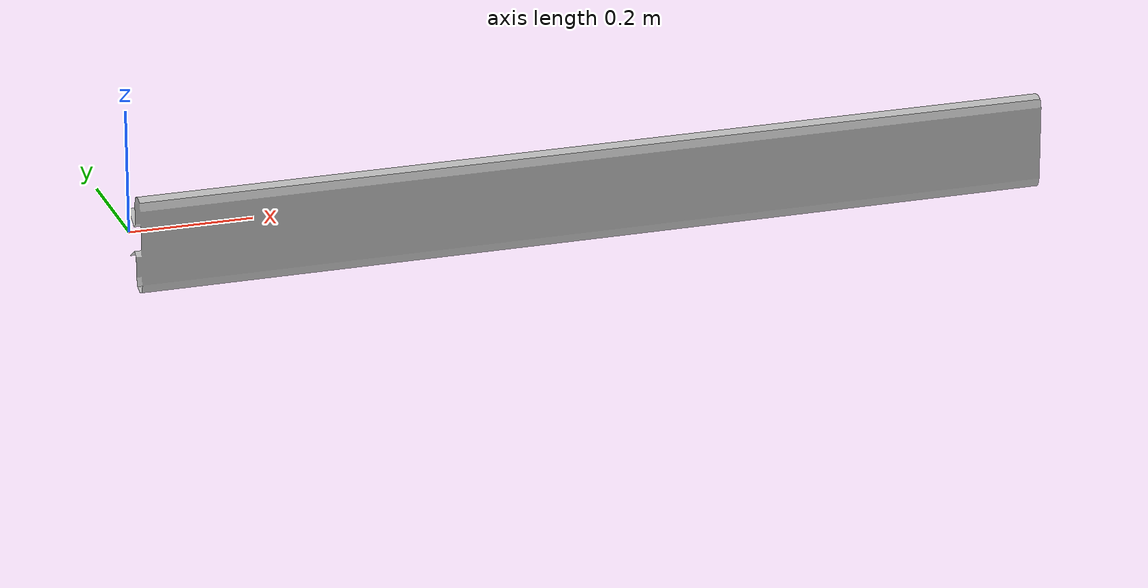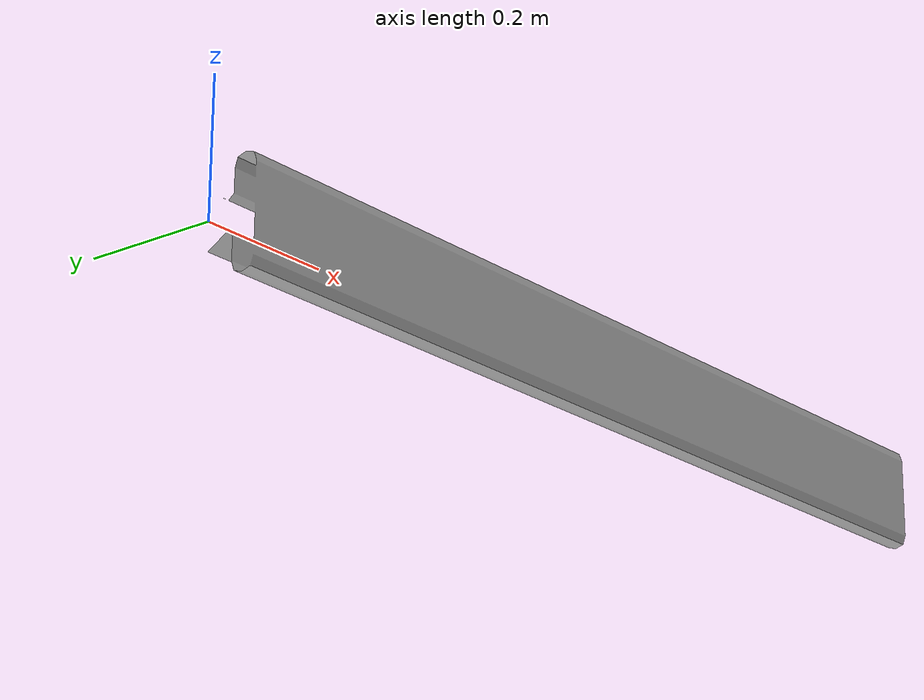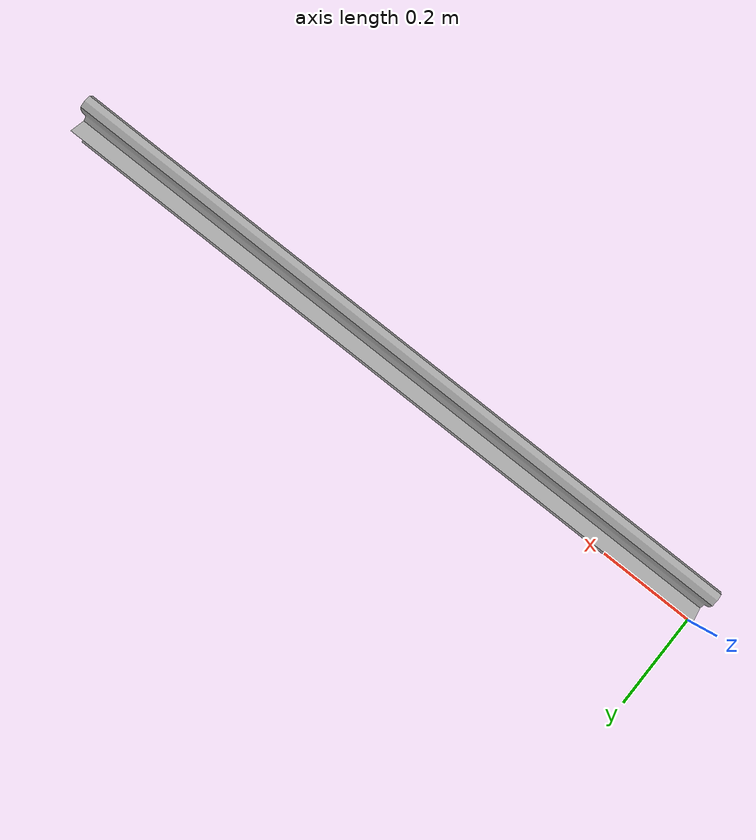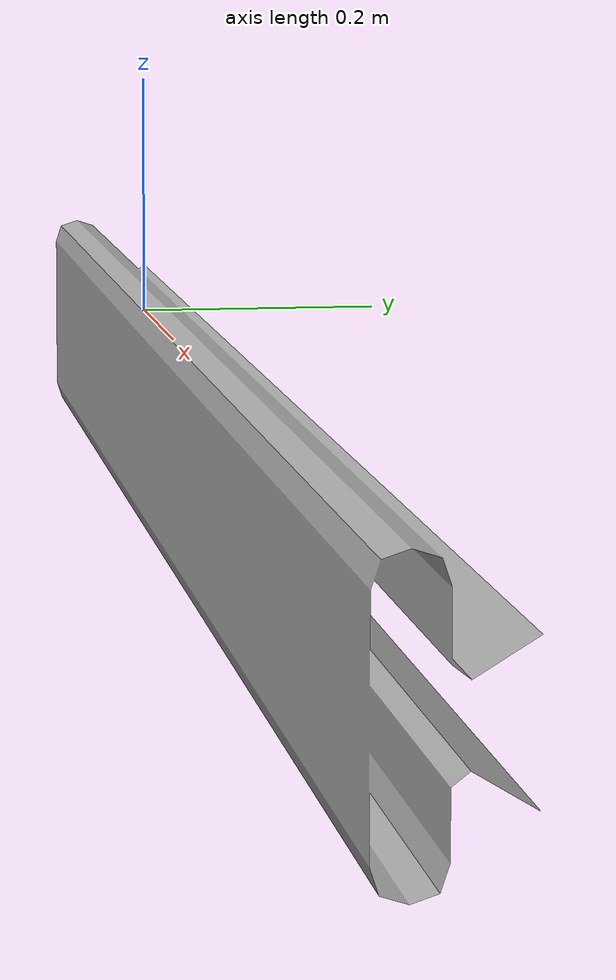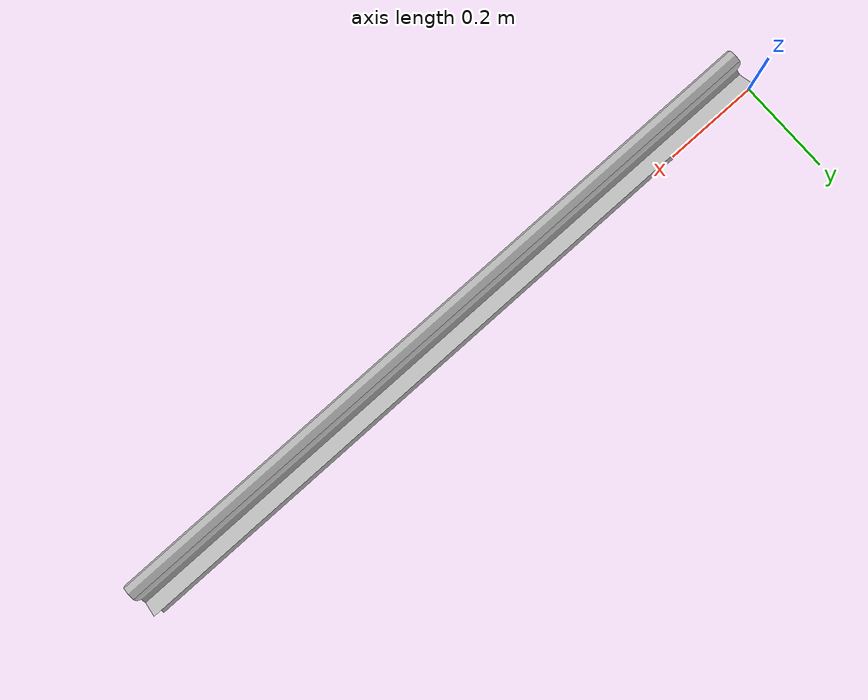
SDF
<sdf version="1.6">
  <model name="Handrail">
   <static>true</static>
    <link name="body">
      <pose>0 0 0 0 0 0</pose>

      <visual name="visual">
        <geometry>
          <mesh>
            <uri>model://Handrail/meshes/Handrail.obj</uri>
            <scale>0.01 0.01 0.01</scale>
          </mesh>
        </geometry>
      </visual>

      <collision name="collision">
        <geometry>
          <mesh>
            <uri>model://Handrail/meshes/Handrail.obj</uri>
            <scale>0.01 0.01 0.01</scale>
          </mesh>
        </geometry>
      </collision>

    </link>
  </model>
</sdf>
